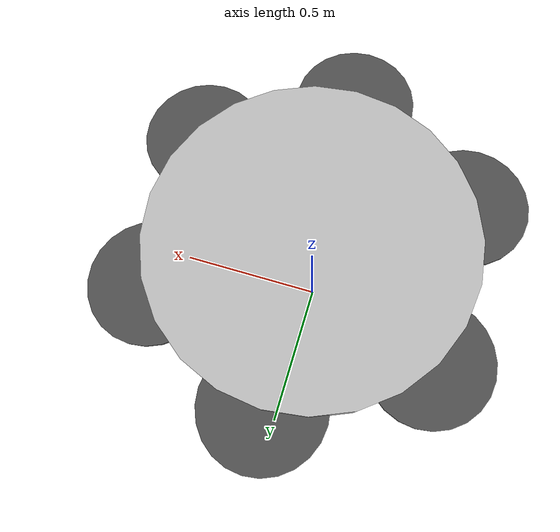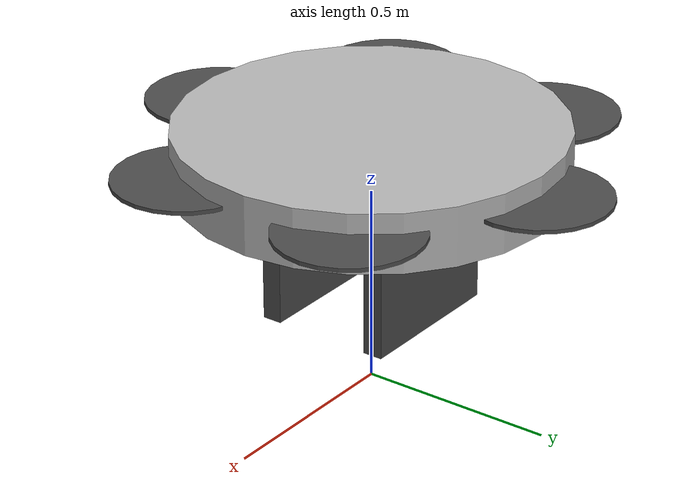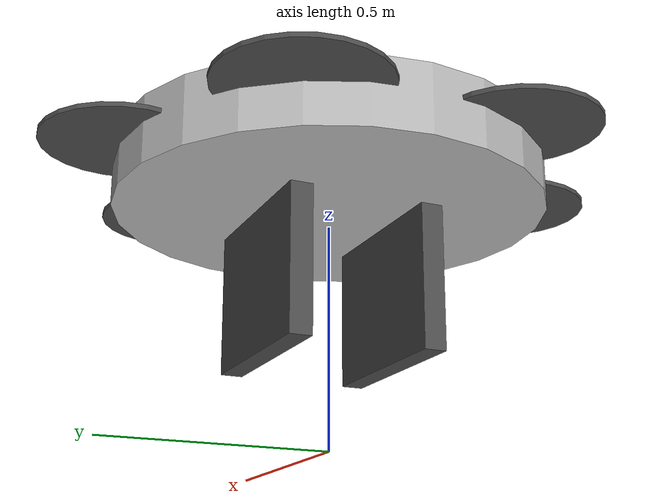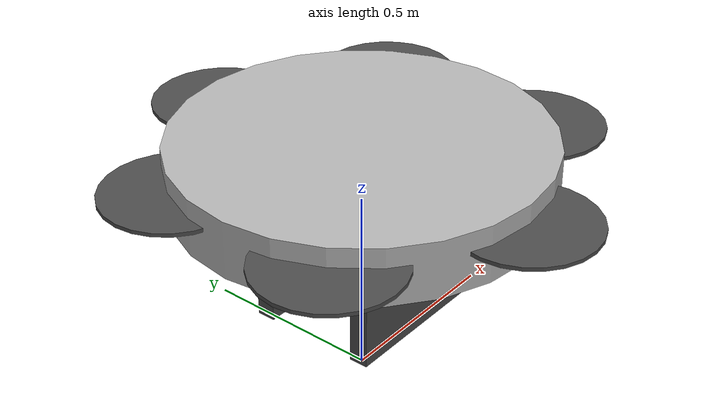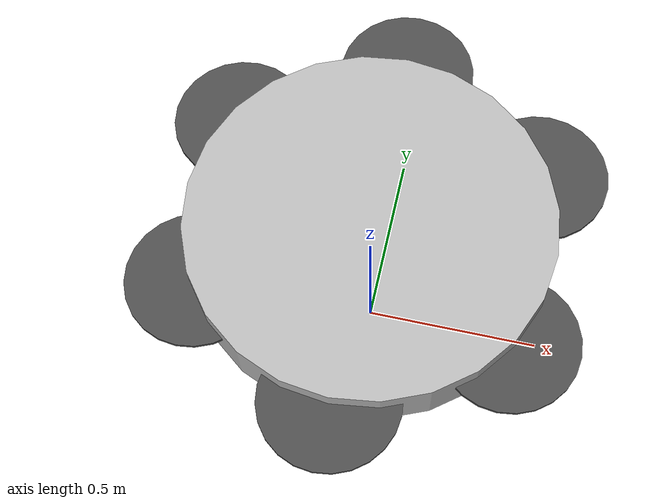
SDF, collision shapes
<?xml version='1.0'?>
<sdf version='1.5'>
  <model name='heifu'>
    <pose>0 0 0.5 0 0 0</pose>
    <link name='base_link'>
      <velocity_decay>
        <linear>0.0</linear>
        <angular>0.0</angular>
      </velocity_decay>
      <inertial>
        <pose>0 0 0 0 0 0</pose>
        <mass>2</mass>
        <inertia>
          <ixx>0.008</ixx>
          <ixy>0</ixy>
          <ixz>0</ixz>
          <iyy>0.015</iyy>
          <iyz>0</iyz>
          <izz>0.017</izz>
        </inertia>
      </inertial>
      <collision name='base_link_collision'>
        <pose>0 0 0.1 0 0 0</pose>
        <geometry>
          <cylinder>
            <length>0.15</length>
            <radius>0.480</radius>
          </cylinder>

        </geometry>
        <surface>
          <contact>
            <ode>
              <max_vel>100.0</max_vel>
              <min_depth>0.001</min_depth>
            </ode>
          </contact>
          <friction>
            <ode>
              <mu>100000.0</mu>
              <mu2>100000.0</mu2>
            </ode>
          </friction>
        </surface>
      </collision>
      <visual name='base_link_visual'>
        <geometry>
          <mesh>
            <uri>model://heifu_with_standoffs/meshes/heifu_v2_base.dae</uri>
          </mesh>
        </geometry>
        <material>
               <script>
                  <uri>model://heifu_with_standoffs/materials/scripts</uri>
                  <uri>model://heifu_with_standoffs/materials/textures/</uri>
                  <name>heifu/Image</name>
               </script>
            </material>
      </visual>
    </link>

<!-- LANDING GEARS -->
    <link name='landing_gear_1'>
      <pose>0 0.15 -0.15 0 0 0</pose>
      <inertial>
        <mass>0.2</mass>
        <inertia>
          <ixx>0.002</ixx>
          <ixy>0</ixy>
          <ixz>0</ixz>
          <iyy>0.002</iyy>
          <iyz>0</iyz>
          <izz>0.0002</izz>
        </inertia>
      </inertial>
      <collision name='landing_gear_1_collision'>
        <geometry>
          <box>
            <size>0.4 0.05 0.32</size>
          </box>
        </geometry>
      </collision>
      <visual name='landing_gear_1_visual'>
        <geometry>
          <mesh>
            <uri>model://heifu_with_standoffs/meshes/LandingGear_V2.dae</uri>
          </mesh>
        </geometry>
        <material>
          <script>
            <name>Gazebo/DarkGrey</name>
          </script>
        </material>
      </visual>
    </link>

    <link name='landing_gear_2'>
      <pose>0 -0.15 -0.15 0 0 -3.1415</pose>
      <inertial>
        <mass>0.2</mass>
        <inertia>
          <ixx>0.002</ixx>
          <ixy>0</ixy>
          <ixz>0</ixz>
          <iyy>0.002</iyy>
          <iyz>0</iyz>
          <izz>0.0002</izz>
        </inertia>
      </inertial>
      <collision name='landing_gear_2_collision'>
        <geometry>
          <box>
            <size>0.4 0.05 0.32</size>
          </box>
        </geometry>
      </collision>
      <visual name='landing_gear_2_visual'>
        <geometry>
          <mesh>
            <uri>model://heifu_with_standoffs/meshes/LandingGear_V2.dae</uri>
          </mesh>
        </geometry>
        <material>
          <script>
            <name>Gazebo/DarkGrey</name>
          </script>
        </material>
      </visual>
    </link>

    <joint name='base_to_lg_1' type='fixed'>
      <child>landing_gear_1</child>
      <parent>base_link</parent>
    </joint>

    <joint name='base_to_lg_2' type='fixed'>
      <child>landing_gear_2</child>
      <parent>base_link</parent>
    </joint>

<!-- CameraLink -->
    <link name="camera_link">
    <pose>0.17 0 -0.05 0 0 0</pose>
      <inertial>
        <pose>0 0 0 0 -0 0</pose>
        <mass>0.01</mass>
        <inertia>
          <ixx>4.15e-6</ixx>
          <ixy>0</ixy>
          <ixz>0</ixz>
          <iyy>2.407e-6</iyy>
          <iyz>0</iyz>
          <izz>2.407e-6</izz>
        </inertia>
      </inertial>
      <visual name="visual">
        <geometry>
          <box>
            <size>0.005 0.005 0.005</size>
          </box>
        </geometry>
        <material>
          <script>
            <name>Gazebo/DarkGrey</name>
          </script>
        </material>
      </visual>
      <!-- camera -->

      <sensor type="depth" name="pointcloud_sensor">
          <always_on>1</always_on>
          <visualize>true</visualize>
          <camera>
            <horizontal_fov>1.047</horizontal_fov>
            <image>
                <width>640</width>
                <height>480</height>
                <format>R8G8B8</format>
            </image>
            <depth_camera>

            </depth_camera>
            <clip>
                <near>0.1</near>
                <far>100</far>
            </clip>
          </camera>
          <plugin name="camera_controller" filename="libgazebo_ros_openni_kinect.so">
            <robotNamespace></robotNamespace>
            <alwaysOn>true</alwaysOn>
            <updateRate>10.0</updateRate>
            <cameraName>pointcloud</cameraName>
            <frameName>camera_link</frameName>
            <imageTopicName>color/image_raw</imageTopicName>
            <depthImageTopicName>depth/image_raw</depthImageTopicName>
            <pointCloudTopicName>depth/color/points</pointCloudTopicName>
            <cameraInfoTopicName>color/camera_info</cameraInfoTopicName>
            <depthImageCameraInfoTopicName>depth/camera_info</depthImageCameraInfoTopicName>
            <pointCloudCutoffMax>10.0</pointCloudCutoffMax>
            <pointCloudCutoff>1.0</pointCloudCutoff>
            <hackBaseline>0.07</hackBaseline>
            <distortionK1>0.0</distortionK1>
            <distortionK2>0.0</distortionK2>
            <distortionK3>0.0</distortionK3>
            <distortionT1>0.0</distortionT1>
            <distortionT2>0.0</distortionT2>
            <CxPrime>0.0</CxPrime>
            <Cx>0.0</Cx>
            <Cy>0.0</Cy>
            <focalLength>0.0</focalLength>
          </plugin>
        </sensor>
    </link>

    <joint name='camera_to_base_link' type='fixed'>
      <pose>0 0 0 -1.57 1.57 0</pose>
      <child>camera_link</child>
      <parent>base_link</parent>
    </joint>

    <link name='ground_truth/odometry_sensorgt_link'>
      <pose>0 0 0 0 -0 0</pose>
      <inertial>
        <pose>0 0 0 0 -0 0</pose>
        <mass>0.15</mass>
        <inertia>
          <ixx>0.0001</ixx>
          <ixy>0</ixy>
          <ixz>0</ixz>
          <iyy>0.0002</iyy>
          <iyz>0</iyz>
          <izz>0.0002</izz>
        </inertia>
      </inertial>
    </link>

    <joint name='ground_truth/odometry_sensorgt_joint' type='revolute'>
      <child>ground_truth/odometry_sensorgt_link</child>
      <parent>base_link</parent>
      <axis>
        <xyz>0 0 1</xyz>
        <limit>
          <lower>0</lower>
          <upper>0</upper>
          <effort>0</effort>
          <velocity>0</velocity>
        </limit>
        <dynamics>
          <damping>1.0</damping>
        </dynamics>
        <use_parent_model_frame>1</use_parent_model_frame>
      </axis>
      <physics>
        <ode>
          <implicit_spring_damper>1</implicit_spring_damper>
        </ode>
      </physics>
    </joint>

    <link name='imu_link'>
      <inertial>
        <pose>0 0 0 0 0 0</pose>
        <mass>0.15</mass>
        <inertia>
          <ixx>0.00001</ixx>
          <ixy>0</ixy>
          <ixz>0</ixz>
          <iyy>0.00002</iyy>
          <iyz>0</iyz>
          <izz>0.00002</izz>
        </inertia>
      </inertial>
      <sensor name="imu_sensor" type="imu">
        <pose>0 0 0 3.141593 0 0</pose>
        <always_on>1</always_on>
        <update_rate>1000.0</update_rate>
      </sensor>
    </link>

    <joint name='imu_joint' type='revolute'>
      <child>imu_link</child>
      <parent>base_link</parent>
      <axis>
        <xyz>0 0 1</xyz>
        <limit>
          <lower>0</lower>
          <upper>0</upper>
          <effort>0</effort>
          <velocity>0</velocity>
        </limit>
        <dynamics>
          <damping>1.0</damping>
        </dynamics>
        <use_parent_model_frame>1</use_parent_model_frame>
      </axis>
      <physics>
        <ode>
          <implicit_spring_damper>1</implicit_spring_damper>
        </ode>
      </physics>
    </joint>

    <!-- Propeller right -->
    <link name='rotor_0'>
      <pose>0 -0.47 0.12 0 0 0</pose>
      <inertial>
        <pose>0 0 0 0 -0 0</pose>
        <mass>0.25</mass>
        <inertia>
          <ixx>9.75e-06</ixx>
          <ixy>0</ixy>
          <ixz>0</ixz>
          <iyy>0.000166704</iyy>
          <iyz>0</iyz>
          <izz>0.000167604</izz>
        </inertia>
      </inertial>
      <collision name='rotor_0_collision'>
        <pose>0 0 0 0 -0 0</pose>
        <geometry>
          <cylinder>
            <length>0.01</length>
            <radius>0.18</radius>
          </cylinder>
        </geometry>
        <surface>
          <contact>
            <ode/>
          </contact>
          <friction>
            <ode/>
          </friction>
        </surface>
      </collision>
      <visual name='rotor_0_visual'>
        <pose>0 0 0 0 -0 0</pose>
        <geometry>
          <mesh>
            <scale>1 1 1</scale>
            <uri>model://heifu_with_standoffs/meshes/Propeller.dae</uri>
          </mesh>
        </geometry>
        <material>
          <script>
            <name>Gazebo/DarkGrey</name>
            <uri>__default__</uri>
          </script>
        </material>
      </visual>
      <gravity>1</gravity>
      <velocity_decay/>
      <self_collide>0</self_collide>
    </link>
    <joint name='rotor_0_joint' type='revolute'>
      <child>rotor_0</child>
      <parent>base_link</parent>
      <axis>
        <xyz>0 0 1</xyz>
        <limit>
          <lower>-1e+16</lower>
          <upper>1e+16</upper>
        </limit>
        <dynamics>
          <damping>0.004</damping>
        </dynamics>
        <use_parent_model_frame>1</use_parent_model_frame>
      </axis>
      <physics>
        <ode>
          <implicit_spring_damper>1</implicit_spring_damper>
        </ode>
      </physics>
    </joint>
    <!-- Propeller left -->
    <link name='rotor_1'>
      <pose>0 0.47 0.12 0 0 0</pose>
      <inertial>
        <pose>0 0 0 0 -0 0</pose>
        <mass>0.25</mass>
        <inertia>
          <ixx>9.75e-06</ixx>
          <ixy>0</ixy>
          <ixz>0</ixz>
          <iyy>0.000166704</iyy>
          <iyz>0</iyz>
          <izz>0.000167604</izz>
        </inertia>
      </inertial>
      <collision name='rotor_1_collision'>
        <pose>0 0 0 0 -0 0</pose>
        <geometry>
          <cylinder>
            <length>0.01</length>
            <radius>0.18</radius>
          </cylinder>
        </geometry>
        <surface>
          <contact>
            <ode/>
          </contact>
          <friction>
            <ode/>
          </friction>
        </surface>
      </collision>
      <visual name='rotor_1_visual'>
        <pose>0 0 0 0 -0 0</pose>
        <geometry>
          <mesh>
            <scale>1 1 1</scale>
            <uri>model://heifu_with_standoffs/meshes/Propeller.dae</uri>
          </mesh>
        </geometry>
        <material>
          <script>
            <name>Gazebo/DarkGrey</name>
            <uri>__default__</uri>
          </script>
        </material>
      </visual>
      <gravity>1</gravity>
      <velocity_decay/>
      <self_collide>0</self_collide>
    </link>
    <joint name='rotor_1_joint' type='revolute'>
      <child>rotor_1</child>
      <parent>base_link</parent>
      <axis>
        <xyz>0 0 1</xyz>
        <limit>
          <lower>-1e+16</lower>
          <upper>1e+16</upper>
        </limit>
        <dynamics>
          <damping>0.004</damping>
        </dynamics>
        <use_parent_model_frame>1</use_parent_model_frame>
      </axis>
      <physics>
        <ode>
          <implicit_spring_damper>1</implicit_spring_damper>
        </ode>
      </physics>
    </joint>
    <!-- Propeller left-front -->
    <link name='rotor_2'>
      <pose>0.401 0.234 0.12 0 0 0</pose>
      <inertial>
        <pose>0 0 0 0 -0 0</pose>
        <mass>0.25</mass>
        <inertia>
          <ixx>9.75e-06</ixx>
          <ixy>0</ixy>
          <ixz>0</ixz>
          <iyy>0.000166704</iyy>
          <iyz>0</iyz>
          <izz>0.000167604</izz>
        </inertia>
      </inertial>
      <collision name='rotor_2_collision'>
        <pose>0 0 0 0 -0 0</pose>
        <geometry>
          <cylinder>
            <length>0.01</length>
            <radius>0.18</radius>
          </cylinder>
        </geometry>
        <surface>
          <contact>
            <ode/>
          </contact>
          <friction>
            <ode/>
          </friction>
        </surface>
      </collision>
      <visual name='rotor_2_visual'>
        <pose>0 0 0 0 -0 0</pose>
        <geometry>
          <mesh>
            <scale>1 1 1</scale>
            <uri>model://heifu_with_standoffs/meshes/Propeller.dae</uri>
          </mesh>
        </geometry>
        <material>
          <script>
            <name>Gazebo/DarkGrey</name>
            <uri>__default__</uri>
          </script>
        </material>
      </visual>
      <gravity>1</gravity>
      <velocity_decay/>
      <self_collide>0</self_collide>
    </link>
    <joint name='rotor_2_joint' type='revolute'>
      <child>rotor_2</child>
      <parent>base_link</parent>
      <axis>
        <xyz>0 0 1</xyz>
        <limit>
          <lower>-1e+16</lower>
          <upper>1e+16</upper>
        </limit>
        <dynamics>
          <damping>0.004</damping>
        </dynamics>
        <use_parent_model_frame>1</use_parent_model_frame>
      </axis>
      <physics>
        <ode>
          <implicit_spring_damper>1</implicit_spring_damper>
        </ode>
      </physics>
    </joint>
    <!-- Propeller right-back -->
    <link name='rotor_3'>
      <pose>-0.401 -0.234 0.12 0 0 0</pose>
      <inertial>
        <pose>0 0 0 0 -0 0</pose>
        <mass>0.25</mass>
        <inertia>
          <ixx>9.75e-06</ixx>
          <ixy>0</ixy>
          <ixz>0</ixz>
          <iyy>0.000166704</iyy>
          <iyz>0</iyz>
          <izz>0.000167604</izz>
        </inertia>
      </inertial>
      <collision name='rotor_3_collision'>
        <pose>0 0 0 0 -0 0</pose>
        <geometry>
          <cylinder>
            <length>0.01</length>
            <radius>0.18</radius>
          </cylinder>
        </geometry>
        <surface>
          <contact>
            <ode/>
          </contact>
          <friction>
            <ode/>
          </friction>
        </surface>
      </collision>
      <visual name='rotor_3_visual'>
        <pose>0 0 0 0 -0 0</pose>
        <geometry>
          <mesh>
            <scale>1 1 1</scale>
            <uri>model://heifu_with_standoffs/meshes/Propeller.dae</uri>
          </mesh>
        </geometry>
        <material>
          <script>
            <name>Gazebo/DarkGrey</name>
            <uri>__default__</uri>
          </script>
        </material>
      </visual>
      <gravity>1</gravity>
      <velocity_decay/>
      <self_collide>0</self_collide>
    </link>
    <joint name='rotor_3_joint' type='revolute'>
      <child>rotor_3</child>
      <parent>base_link</parent>
      <axis>
        <xyz>0 0 1</xyz>
        <limit>
          <lower>-1e+16</lower>
          <upper>1e+16</upper>
        </limit>
        <dynamics>
          <damping>0.004</damping>
        </dynamics>
        <use_parent_model_frame>1</use_parent_model_frame>
      </axis>
      <physics>
        <ode>
          <implicit_spring_damper>1</implicit_spring_damper>
        </ode>
      </physics>
    </joint>
    <!-- Propeller right-front -->
    <link name='rotor_4'>
      <pose>0.401 -0.234 0.12 0 0 0</pose>>
      <inertial>
        <pose>0 0 0 0 -0 0</pose>
        <mass>0.25</mass>
        <inertia>
          <ixx>9.75e-06</ixx>
          <ixy>0</ixy>
          <ixz>0</ixz>
          <iyy>0.000166704</iyy>
          <iyz>0</iyz>
          <izz>0.000167604</izz>
        </inertia>
      </inertial>
      <collision name='rotor_4_collision'>
        <pose>0 0 0 0 -0 0</pose>
        <geometry>
          <cylinder>
            <length>0.01</length>
            <radius>0.18</radius>
          </cylinder>
        </geometry>
        <surface>
          <contact>
            <ode/>
          </contact>
          <friction>
            <ode/>
          </friction>
        </surface>
      </collision>
      <visual name='rotor_4_visual'>
        <pose>0 0 0 0 -0 0</pose>
        <geometry>
          <mesh>
            <scale>1 1 1</scale>
            <uri>model://heifu_with_standoffs/meshes/Propeller.dae</uri>
          </mesh>
        </geometry>
        <material>
          <script>
            <name>Gazebo/DarkGrey</name>
            <uri>__default__</uri>
          </script>
        </material>
      </visual>
      <gravity>1</gravity>
      <velocity_decay/>
      <self_collide>0</self_collide>
    </link>
    <joint name='rotor_4_joint' type='revolute'>
      <child>rotor_4</child>
      <parent>base_link</parent>
      <axis>
        <xyz>0 0 1</xyz>
        <limit>
          <lower>-1e+16</lower>
          <upper>1e+16</upper>
        </limit>
        <dynamics>
          <damping>0.004</damping>
        </dynamics>
        <use_parent_model_frame>1</use_parent_model_frame>
      </axis>
      <physics>
        <ode>
          <implicit_spring_damper>1</implicit_spring_damper>
        </ode>
      </physics>
    </joint>
    <!-- Propeller left-back -->
    <link name='rotor_5'>
      <pose>-0.401 0.234 0.12 0 0 0</pose>
      <inertial>
        <pose>0 0 0 0 -0 0</pose>
        <mass>0.25</mass>
        <inertia>
          <ixx>9.75e-06</ixx>
          <ixy>0</ixy>
          <ixz>0</ixz>
          <iyy>0.000166704</iyy>
          <iyz>0</iyz>
          <izz>0.000167604</izz>
        </inertia>
      </inertial>
      <collision name='rotor_5_collision'>
        <pose>0 0 0 0 -0 0</pose>
        <geometry>
          <cylinder>
            <length>0.01</length>
            <radius>0.18</radius>
          </cylinder>
        </geometry>
        <surface>
          <contact>
            <ode/>
          </contact>
          <friction>
            <ode/>
          </friction>
        </surface>
      </collision>
      <visual name='rotor_5_visual'>
        <pose>0 0 0 0 -0 0</pose>
        <geometry>
          <mesh>
            <scale>1 1 1</scale>
            <uri>model://heifu_with_standoffs/meshes/Propeller.dae</uri>
          </mesh>
        </geometry>
        <material>
          <script>
            <name>Gazebo/DarkGrey</name>
            <uri>__default__</uri>
          </script>
        </material>
      </visual>
      <gravity>1</gravity>
      <velocity_decay/>
      <self_collide>0</self_collide>
    </link>
    <joint name='rotor_5_joint' type='revolute'>
      <child>rotor_5</child>
      <parent>base_link</parent>
      <axis>
        <xyz>0 0 1</xyz>
        <limit>
          <lower>-1e+16</lower>
          <upper>1e+16</upper>
        </limit>
        <dynamics>
          <damping>0.004</damping>
        </dynamics>
        <use_parent_model_frame>1</use_parent_model_frame>
      </axis>
      <physics>
        <ode>
          <implicit_spring_damper>1</implicit_spring_damper>
        </ode>
      </physics>
    </joint>

    <static>0</static>
  </model>
</sdf>
